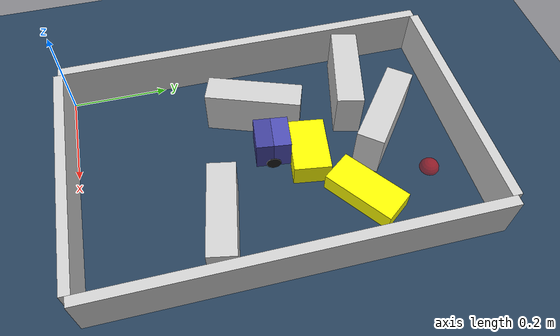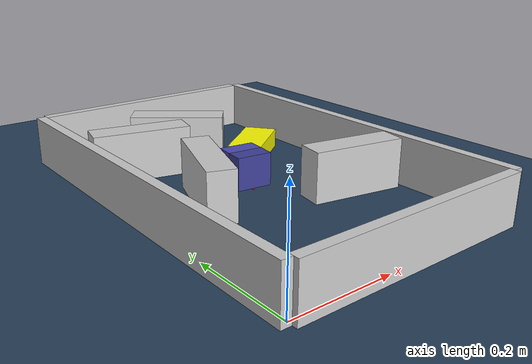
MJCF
<?xml version='1.0' encoding='utf-8'?>
<mujoco model="real_buildable">
  <compiler angle="degree" />
  <option timestep="0.002" integrator="implicitfast" iterations="100" cone="elliptic" />
  <default>
    <geom density="1" />
  </default>
  <asset>
    <texture builtin="gradient" height="3072" rgb1="0.3 0.5 0.7" rgb2="0 0 0" type="skybox" width="512" />
    <texture builtin="checker" height="300" mark="edge" markrgb="0.8 0.8 0.8" name="groundplane" rgb1="0.2 0.3 0.4" rgb2="0.1 0.2 0.3" type="2d" width="300" />
    <material name="groundplane" reflectance="0.2" texrepeat="5 5" texture="groundplane" texuniform="true" />
  </asset>
  <worldbody>
    <light dir="0 0 -1" directional="true" pos="0 0 1.5" />
    <geom name="floor" type="plane" condim="4" friction="0.5 0.005 0.001" material="groundplane" size="0 0 0.05" />
    <body name="walls">
      <geom name="wall_boundary_left" type="box" condim="4" friction="1.0 0.005 0.0001" rgba="0.8 0.8 0.8 1" pos="-0.010000 0.387500 0.050000" euler="0 0 0.000000" size="0.010000 0.397500 0.050000" />
      <geom name="wall_boundary_right" type="box" condim="4" friction="1.0 0.005 0.0001" rgba="0.8 0.8 0.8 1" pos="0.500000 0.387500 0.050000" euler="0 0 0.000000" size="0.010000 0.397500 0.050000" />
      <geom name="wall_boundary_bottom" type="box" condim="4" friction="1.0 0.005 0.0001" rgba="0.8 0.8 0.8 1" pos="0.245000 -0.010000 0.050000" euler="0 0 0.000000" size="0.245000 0.010000 0.050000" />
      <geom name="wall_boundary_top" type="box" condim="4" friction="1.0 0.005 0.0001" rgba="0.8 0.8 0.8 1" pos="0.245000 0.785000 0.050000" euler="0 0 0.000000" size="0.245000 0.010000 0.050000" />
      <geom name="wall_inner_1" type="box" condim="4" friction="1.0 0.005 0.0001" rgba="0.8 0.8 0.8 1" pos="0.389000 0.264000 0.050000" euler="0 0 169.500000" size="0.095000 0.027500 0.050000" />
      <geom name="wall_inner_2" type="box" condim="4" friction="1.0 0.005 0.0001" rgba="0.8 0.8 0.8 1" pos="0.138000 0.379000 0.050000" euler="0 0 70.200000" size="0.097500 0.027500 0.050000" />
      <geom name="wall_inner_3" type="box" condim="4" friction="1.0 0.005 0.0001" rgba="0.8 0.8 0.8 1" pos="0.115000 0.587000 0.050000" euler="0 0 166.600000" size="0.097500 0.027500 0.050000" />
      <geom name="wall_inner_4" type="box" condim="4" friction="1.0 0.005 0.0001" rgba="0.8 0.8 0.8 1" pos="0.232000 0.631000 0.050000" euler="0 0 142.000000" size="0.097500 0.027500 0.050000" />
    </body>
    <body name="car" pos="0.23419311700900458 0.39385525016642703 0.01" quat="0.74846947497451599 0 0 0.66316924312830761">
      <freejoint name="car_freejoint" />
      <inertial pos="0 0 0.0375" mass="0.35" diaginertia="0.000266 0.000266 0.000286" />
      <geom name="front_chassis_collision" type="box" pos="0.0175 0 0.0375" size="0.0175 0.035 0.0325" rgba="0.3 0.3 0.7 1" />
      <geom name="rear_chassis_collision" type="box" pos="-0.0175 0 0.0375" size="0.0175 0.035 0.0325" rgba="0.25 0.25 0.6 1" />
      <geom name="front_marker" type="box" pos="0.034 0 0.0505" size="0.002 0.015 0.01" rgba="1 0.2 0.2 1" contype="0" conaffinity="0" />
      <body name="rear_support_body" pos="-0.03 0 0.0025">
        <joint name="rear_caster_joint" type="ball" damping="0.0001" />
        <inertial pos="0 0 0" mass="0.025" diaginertia="0.000001 0.000001 0.000001" />
        <geom name="rear_support" type="sphere" pos="0 0 0" size="0.0025" friction="0 0 0" rgba="0.7 0.1 0.1 1" />
      </body>
      <body name="front_support_body" pos="0.03 0 0.0025">
        <joint name="front_caster_joint" type="ball" damping="0.0001" />
        <inertial pos="0 0 0" mass="0.025" diaginertia="0.000001 0.000001 0.000001" />
        <geom name="front_support" type="sphere" pos="0 0 0" size="0.0025" friction="0 0 0" rgba="0.1 0.7 0.1 1" />
      </body>
      <body name="left_wheel" pos="0 0.0375 0.015">
        <inertial pos="0 0 0" mass="0.05" diaginertia="0.000003 0.000006 0.000003" />
        <joint name="left_wheel_joint" type="hinge" axis="0 1 0" damping="0.01" armature="0.0001" />
        <geom name="left_wheel_collision" type="cylinder" size="0.015 0.0005" euler="90 0 0" rgba="0.1 0.1 0.1 1" />
      </body>
      <body name="right_wheel" pos="0 -0.0375 0.015">
        <inertial pos="0 0 0" mass="0.05" diaginertia="0.000003 0.000006 0.000003" />
        <joint name="right_wheel_joint" type="hinge" axis="0 1 0" damping="0.01" armature="0.0001" />
        <geom name="right_wheel_collision" type="cylinder" size="0.015 0.0005" euler="90 0 0" rgba="0.1 0.1 0.1 1" />
      </body>
    </body>
    <body name="obstacle_0_movable">
      <geom name="obstacle_0_movable" condim="4" pos="0.25796382153421443 0.46538673992170776 0.025000000000000001" friction="1 0.005 0.0001" rgba="1 1 0 1" size="0.037500 0.060000 0.025000" type="box" mass="0.1" quat="0.65726193421078494 0 0 -0.75366222529558813" />
      <joint type="free" />
    </body>
    <body name="obstacle_1_movable">
      <geom name="obstacle_1_movable" condim="4" pos="0.37415940599371483 0.55026060960595757 0.02" friction="1 0.005 0.0001" rgba="1 1 0 1" size="0.035000 0.075000 0.020000" type="box" mass="0.1" quat="0.89554707462768035 0 0 -0.44496678204760859" />
      <joint type="free" />
    </body>
    <site name="goal" type="sphere" pos="0.340000 0.702000 0.0" size="0.02" rgba="1 0 0 0.5" />
  </worldbody>
  <actuator>
    <velocity name="left_wheel_drive" joint="left_wheel_joint" ctrlrange="-25 25" kv="0.75" forcerange="-0.5 0.5" />
    <velocity name="right_wheel_drive" joint="right_wheel_joint" ctrlrange="-25 25" kv="0.75" forcerange="-0.5 0.5" />
  </actuator>
</mujoco>
